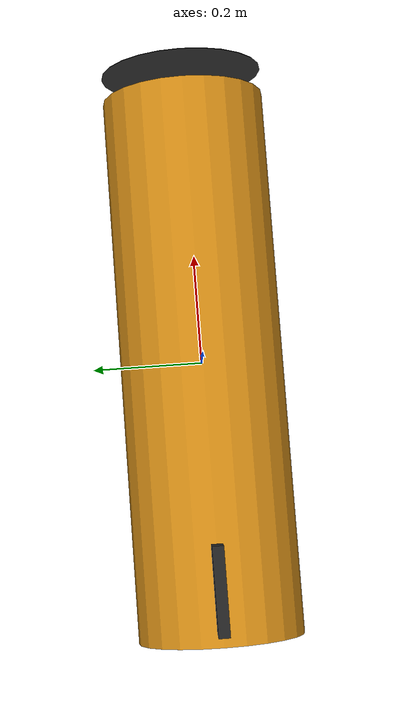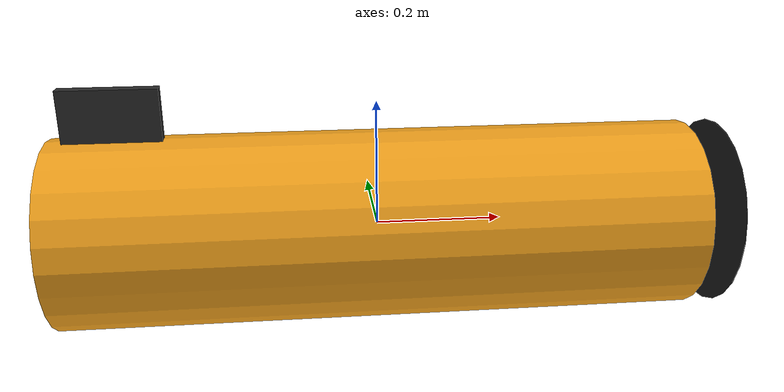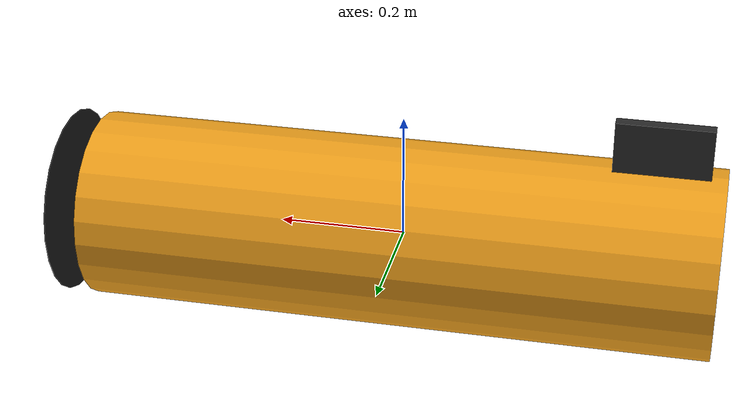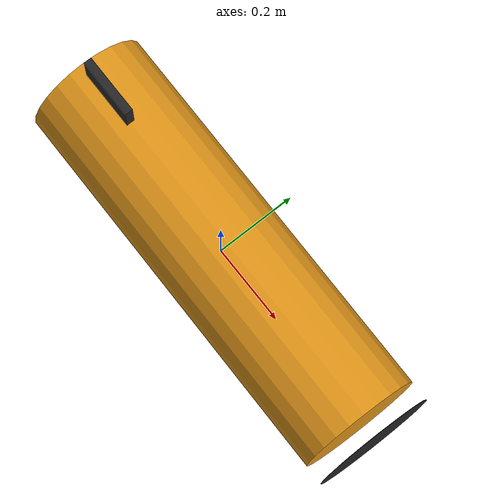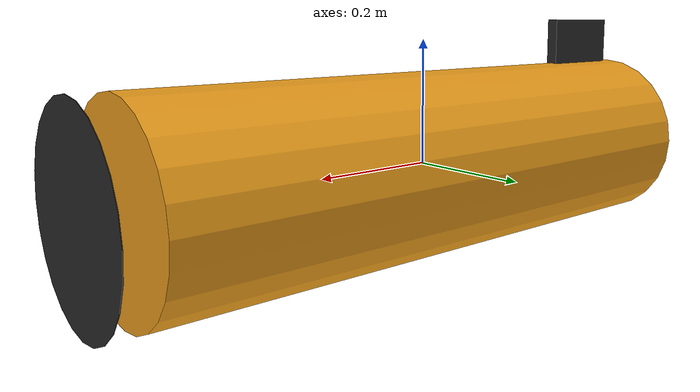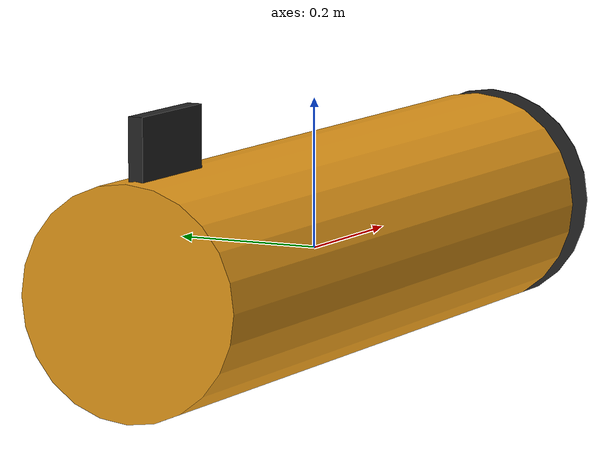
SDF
<?xml version="1.0"?>
<sdf version="1.9">
  <model name="auv">

    <link name="base_link">
      <inertial>
        <mass>70.7</mass>
        <inertia>
          <ixx>6.29</ixx>
          <iyy>6.29</iyy>
          <izz>0.795</izz>
          <ixy>0</ixy>
          <ixz>0</ixz>
          <iyz>0</iyz>
        </inertia>
      </inertial>

      <!-- Single collision = the buoyancy/physics volume. Cylinder's local
           z-axis is rotated onto the link's x-axis so "forward" is +x. -->
      <collision name="hull_collision">
        <pose>0 0 0 0 1.5708 0</pose>
        <geometry>
          <cylinder>
            <radius>0.15</radius>
            <length>1.0</length>
          </cylinder>
        </geometry>
      </collision>

      <visual name="hull_visual">
        <pose>0 0 0 0 1.5708 0</pose>
        <geometry>
          <cylinder>
            <radius>0.15</radius>
            <length>1.0</length>
          </cylinder>
        </geometry>
        <material>
          <ambient>0.85 0.55 0.05 1</ambient>
          <diffuse>0.9 0.6 0.1 1</diffuse>
          <specular>0.3 0.3 0.3 1</specular>
        </material>
      </visual>

      <!-- Nose cone: visual only (no collision), so it does not perturb the
           buoyancy volume computed from hull_collision. -->
      <visual name="nose_visual">
        <pose>0.55 0 0 0 1.5708 0</pose>
        <geometry>
          <cylinder>
            <radius>0.15</radius>
            <length>0.001</length>
          </cylinder>
        </geometry>
        <material>
          <ambient>0.1 0.1 0.1 1</ambient>
          <diffuse>0.15 0.15 0.15 1</diffuse>
        </material>
      </visual>

      <!-- Vertical fin, purely cosmetic: makes heading changes visible on
           the recorded demo video. -->
      <visual name="fin_visual">
        <pose>-0.4 0 0.13 0 0 0</pose>
        <geometry>
          <box>
            <size>0.15 0.02 0.2</size>
          </box>
        </geometry>
        <material>
          <ambient>0.1 0.1 0.1 1</ambient>
          <diffuse>0.15 0.15 0.15 1</diffuse>
        </material>
      </visual>
    </link>

    <plugin filename="gz-sim-velocity-control-system" name="gz::sim::systems::VelocityControl">
      <topic>/model/auv/cmd_vel</topic>
    </plugin>

    <plugin filename="gz-sim-odometry-publisher-system" name="gz::sim::systems::OdometryPublisher">
      <odom_frame>auv/odom</odom_frame>
      <robot_base_frame>auv/base_link</robot_base_frame>
      <odom_publish_frequency>30</odom_publish_frequency>
      <dimensions>3</dimensions>
    </plugin>
  </model>
</sdf>
